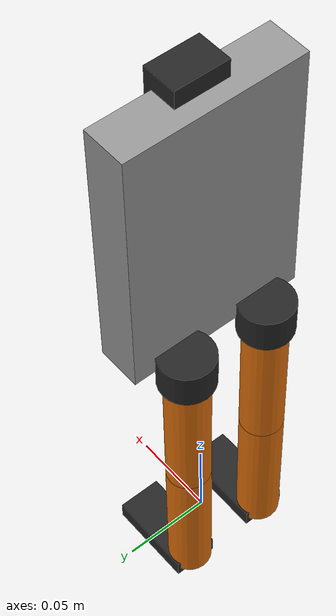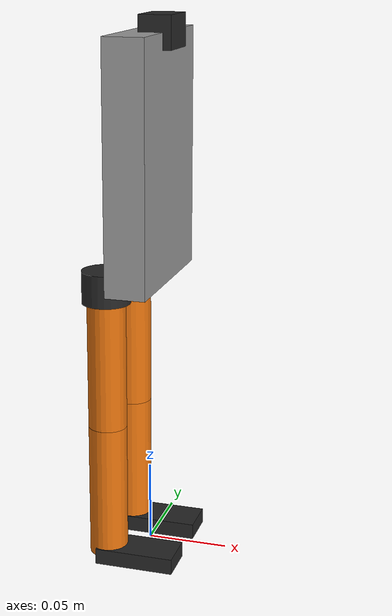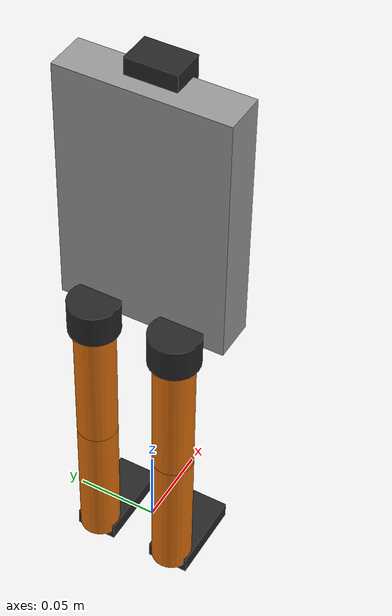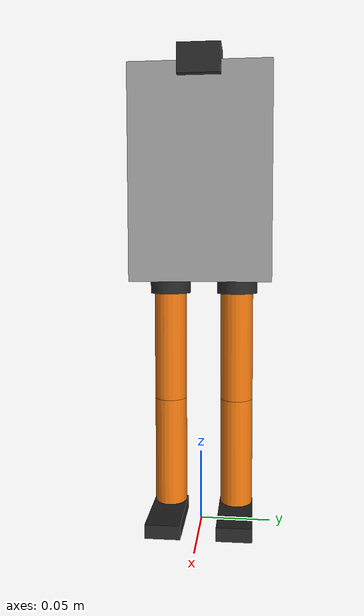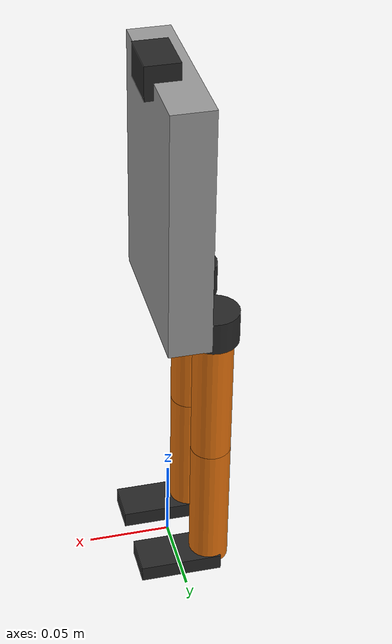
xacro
<?xml version="1.0"?>
<robot name="humanoid_kick_bot" xmlns:xacro="http://www.ros.org/wiki/xacro">

  <xacro:property name="thigh_len" value="0.090"/>
  <xacro:property name="shin_len" value="0.085"/>
  <xacro:property name="link_radius" value="0.012"/>
  <xacro:property name="hip_sep" value="0.05"/>
  <xacro:property name="torso_depth" value="0.025"/>   <!-- front-to-back (x) -->
  <xacro:property name="torso_width" value="0.10"/>   <!-- left-to-right (y) -->
  <xacro:property name="torso_height" value="0.15"/>  <!-- vertical (z) - tall, upright torso -->

  <material name="grey"><color rgba="0.6 0.6 0.6 1"/></material>
  <material name="orange"><color rgba="0.9 0.45 0.05 1"/></material>
  <material name="dark"><color rgba="0.15 0.15 0.15 1"/></material>

  <!-- Fixed base: the robot stands on this (PART 1: "fixed base") -->
  <link name="base_footprint"/>

  <!-- Upright torso, standing like a human body (tall box: depth x width x height) -->
  <link name="base_link">
    <visual>
      <geometry><box size="${torso_depth} ${torso_width} ${torso_height}"/></geometry>
      <material name="grey"/>
    </visual>
    <collision>
      <geometry><box size="${torso_depth} ${torso_width} ${torso_height}"/></geometry>
    </collision>
    <inertial>
      <mass value="0.3"/>
      <inertia ixx="0.001" ixy="0" ixz="0" iyy="0.001" iyz="0" izz="0.001"/>
    </inertial>
  </link>

  <!-- base_link is centered on its own origin, so its bottom face sits at
       -torso_height/2 - place that bottom face right on top of the legs. -->
  <joint name="base_footprint_joint" type="fixed">
    <parent link="base_footprint"/>
    <child link="base_link"/>
    <origin xyz="0 0 ${thigh_len+shin_len+torso_height/2}" rpy="0 0 0"/>
  </joint>

  <!-- Camera (CH7): mounted on TOP of the torso, facing forward (+x) -->
  <link name="camera_mount"/>
  <joint name="camera_mount_joint" type="fixed">
    <parent link="base_link"/>
    <child link="camera_mount"/>
    <origin xyz="${torso_depth/2 - 0.005} 0 ${torso_height/2}" rpy="0 0 0"/>
  </joint>

  <link name="camera_link">
    <visual>
      <geometry><box size="0.02 0.03 0.02"/></geometry>
      <material name="dark"/>
    </visual>
  </link>
  <joint name="camera_pan" type="revolute">
    <parent link="camera_mount"/>
    <child link="camera_link"/>
    <origin xyz="0 0 0" rpy="0 0 0"/>
    <axis xyz="0 0 1"/>
    <limit lower="-1.05" upper="1.05" effort="1.0" velocity="3.0"/> <!-- +-60 deg from neutral (~30-150 deg servo) -->
  </joint>

  <!-- ============ Leg macro (waist -> thigh -> shin -> foot) ============ -->
  <xacro:macro name="leg" params="side y_off">

    <link name="${side}_waist_link">
      <visual><geometry><cylinder radius="0.015" length="0.02"/></geometry><material name="dark"/></visual>
    </link>
    <joint name="${side}_waist" type="revolute">
      <parent link="base_link"/>
      <child link="${side}_waist_link"/>
      <origin xyz="-0.02 ${y_off} -${torso_height/2}" rpy="0 0 0"/>
      <axis xyz="1 0 0"/>
      <limit lower="-0.35" upper="0.35" effort="1.0" velocity="3.0"/> <!-- +-20 deg from neutral (~70-110 deg servo) -->
    </joint>

    <!-- thigh_link origin = hip joint = IK frame origin for this leg -->
    <link name="${side}_thigh_link">
      <visual>
        <origin xyz="0 0 -${thigh_len/2}"/>
        <geometry><cylinder radius="${link_radius}" length="${thigh_len}"/></geometry>
        <material name="orange"/>
      </visual>
      <collision>
        <origin xyz="0 0 -${thigh_len/2}"/>
        <geometry><cylinder radius="${link_radius}" length="${thigh_len}"/></geometry>
      </collision>
      <inertial><mass value="0.05"/><inertia ixx="1e-5" ixy="0" ixz="0" iyy="1e-5" iyz="0" izz="1e-5"/></inertial>
    </link>
    <joint name="${side}_thigh" type="revolute">
      <parent link="${side}_waist_link"/>
      <child link="${side}_thigh_link"/>
      <origin xyz="0 0 0" rpy="0 0 0"/>
      <axis xyz="0 1 0"/> <!-- pitch: sagittal plane matches FK x-y model -->
      <limit lower="-1.05" upper="1.05" effort="1.0" velocity="3.0"/> <!-- +-60 deg from neutral (~30-150 deg servo) -->
    </joint>

    <link name="${side}_shin_link">
      <visual>
        <origin xyz="0 0 -${shin_len/2}"/>
        <geometry><cylinder radius="${link_radius}" length="${shin_len}"/></geometry>
        <material name="orange"/>
      </visual>
      <collision>
        <origin xyz="0 0 -${shin_len/2}"/>
        <geometry><cylinder radius="${link_radius}" length="${shin_len}"/></geometry>
      </collision>
      <inertial><mass value="0.04"/><inertia ixx="1e-5" ixy="0" ixz="0" iyy="1e-5" iyz="0" izz="1e-5"/></inertial>
    </link>
    <joint name="${side}_shin" type="revolute">
      <parent link="${side}_thigh_link"/>
      <child link="${side}_shin_link"/>
      <origin xyz="0 0 -${thigh_len}" rpy="0 0 0"/>
      <axis xyz="0 1 0"/>
      <limit lower="-1.22" upper="1.22" effort="1.0" velocity="3.0"/> <!-- +-70 deg from neutral (~20-160 deg servo) -->
    </joint>

    <link name="${side}_foot_link">
      <visual>
        <origin xyz="0.02 0 0"/>
        <geometry><box size="0.05 0.025 0.01"/></geometry>
        <material name="dark"/>
      </visual>
      <collision>
        <origin xyz="0.02 0 0"/>
        <geometry><box size="0.05 0.025 0.01"/></geometry>
      </collision>
      <inertial><mass value="0.02"/><inertia ixx="1e-6" ixy="0" ixz="0" iyy="1e-6" iyz="0" izz="1e-6"/></inertial>
    </link>
    <joint name="${side}_foot" type="revolute">
      <parent link="${side}_shin_link"/>
      <child link="${side}_foot_link"/>
      <origin xyz="0 0 -${shin_len}" rpy="0 0 0"/>
      <axis xyz="1 0 0"/>
      <limit lower="-0.52" upper="0.52" effort="1.0" velocity="3.0"/> <!-- +-30 deg from neutral (~60-120 deg servo) -->
    </joint>

  </xacro:macro>

  <xacro:leg side="left" y_off="${hip_sep/2}"/>
  <xacro:leg side="right" y_off="-${hip_sep/2}"/>

</robot>
